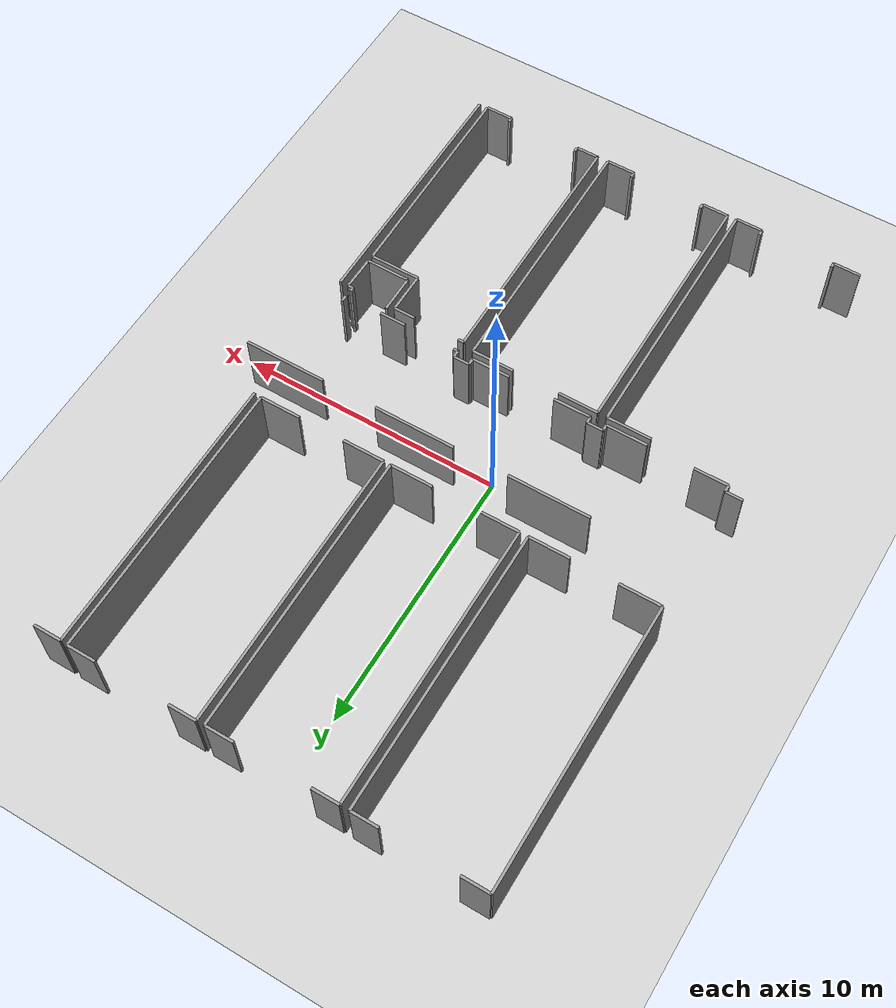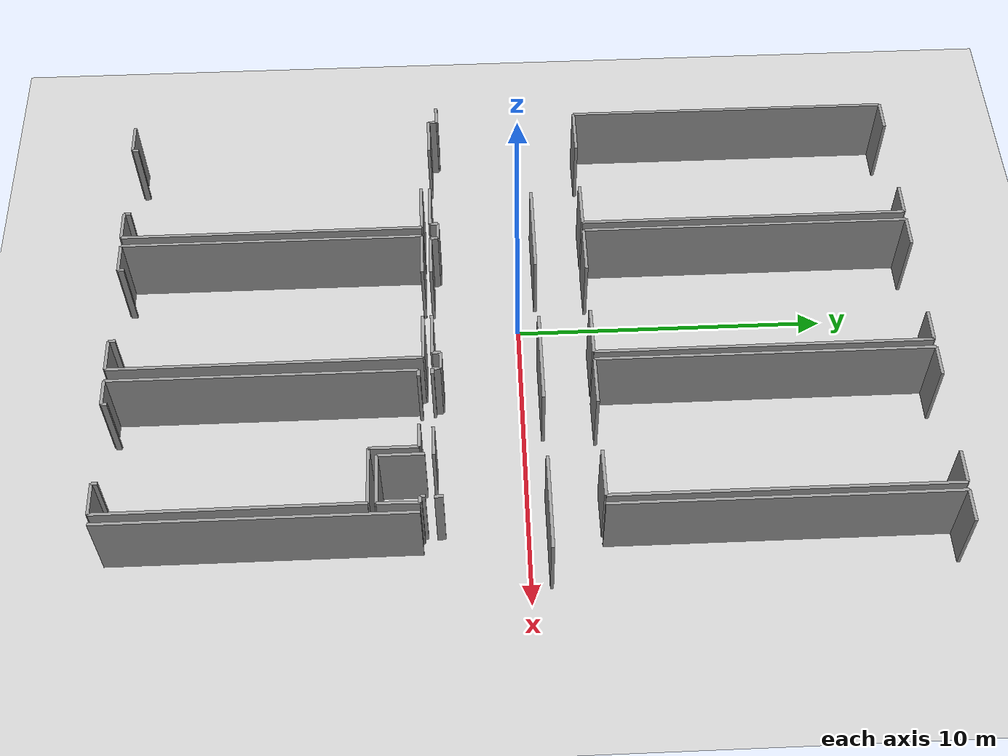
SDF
<sdf version="1.6">
 <world name="default">
  <model name="ground_plane">
   <static>1</static>
   <link name="link">
    <collision name="collision">
     <geometry><plane><normal>0 0 1</normal><size>100 100</size></plane></geometry>
     <surface><friction><ode><mu>100</mu><mu2>50</mu2></ode></friction></surface>
    </collision>
    <visual name="visual">
     <cast_shadows>0</cast_shadows>
     <geometry><plane><normal>0 0 1</normal><size>100 100</size></plane></geometry>
     <material>
      <script><uri>file://media/materials/scripts/gazebo.material</uri><name>Gazebo/Grey</name></script>
     </material>
    </visual>
   </link>
  </model>
  <model name="0510030967_A-40">
   <static>1</static>
   <link name="Wall_45">
    <collision name="Wall_45_Collision">
     <geometry><box><size>3.09545875811 0.1 2.5</size></box></geometry>
     <pose>1.54772937905 0 1.25 0 0 0</pose>
    </collision>
    <visual name="Wall_45_Visual">
     <pose>1.54772937905 0 1.25 0 0 0</pose>
     <geometry><box><size>3.09545875811 0.1 2.5</size></box></geometry>
     <material>
      <script><uri>file://media/materials/scripts/gazebo.material</uri><name>Gazebo/Grey</name></script>
      <ambient>1 1 1 1</ambient>
     </material>
    </visual>
    <pose>34.6960021329 -12.2899183668 0 0 0 0.0</pose>
   </link>
   <link name="Wall_46">
    <collision name="Wall_46_Collision">
     <geometry><box><size>3.07362220219 0.1 2.5</size></box></geometry>
     <pose>1.5368111011 0 1.25 0 0 0</pose>
    </collision>
    <visual name="Wall_46_Visual">
     <pose>1.5368111011 0 1.25 0 0 0</pose>
     <geometry><box><size>3.07362220219 0.1 2.5</size></box></geometry>
     <material>
      <script><uri>file://media/materials/scripts/gazebo.material</uri><name>Gazebo/Grey</name></script>
      <ambient>1 1 1 1</ambient>
     </material>
    </visual>
    <pose>39.8865006919 -12.2899183668 0 0 0 0.0</pose>
   </link>
   <link name="Wall_47">
    <collision name="Wall_47_Collision">
     <geometry><box><size>3.10066398365 0.1 2.5</size></box></geometry>
     <pose>1.55033199182 0 1.25 0 0 0</pose>
    </collision>
    <visual name="Wall_47_Visual">
     <pose>1.55033199182 0 1.25 0 0 0</pose>
     <geometry><box><size>3.10066398365 0.1 2.5</size></box></geometry>
     <material>
      <script><uri>file://media/materials/scripts/gazebo.material</uri><name>Gazebo/Grey</name></script>
      <ambient>1 1 1 1</ambient>
     </material>
    </visual>
    <pose>45.0733175061 -12.2899183668 0 0 0 0.0</pose>
   </link>
   <link name="Wall_63">
    <collision name="Wall_63_Collision">
     <geometry><box><size>0.261403887415 0.1 2.5</size></box></geometry>
     <pose>0.130701943707 0 1.25 0 0 0</pose>
    </collision>
    <visual name="Wall_63_Visual">
     <pose>0.130701943707 0 1.25 0 0 0</pose>
     <geometry><box><size>0.261403887415 0.1 2.5</size></box></geometry>
     <material>
      <script><uri>file://media/materials/scripts/gazebo.material</uri><name>Gazebo/Grey</name></script>
      <ambient>1 1 1 1</ambient>
     </material>
    </visual>
    <pose>46.3205403278 -15.4039128061 0 0 0 -1.57079632679</pose>
   </link>
   <link name="Wall_64">
    <collision name="Wall_64_Collision">
     <geometry><box><size>0.984676323841 0.1 2.5</size></box></geometry>
     <pose>0.492338161921 0 1.25 0 0 0</pose>
    </collision>
    <visual name="Wall_64_Visual">
     <pose>0.492338161921 0 1.25 0 0 0</pose>
     <geometry><box><size>0.984676323841 0.1 2.5</size></box></geometry>
     <material>
      <script><uri>file://media/materials/scripts/gazebo.material</uri><name>Gazebo/Grey</name></script>
      <ambient>1 1 1 1</ambient>
     </material>
    </visual>
    <pose>44.8823745985 -15.6653166935 0 0 0 3.14159265359</pose>
   </link>
   <link name="Wall_65">
    <collision name="Wall_65_Collision">
     <geometry><box><size>0.183071590895 0.1 2.5</size></box></geometry>
     <pose>0.0915357954473 0 1.25 0 0 0</pose>
    </collision>
    <visual name="Wall_65_Visual">
     <pose>0.0915357954473 0 1.25 0 0 0</pose>
     <geometry><box><size>0.183071590895 0.1 2.5</size></box></geometry>
     <material>
      <script><uri>file://media/materials/scripts/gazebo.material</uri><name>Gazebo/Grey</name></script>
      <ambient>1 1 1 1</ambient>
     </material>
    </visual>
    <pose>41.928345627 -15.6653166935 0 0 0 3.14159265359</pose>
   </link>
   <link name="Wall_66">
    <collision name="Wall_66_Collision">
     <geometry><box><size>0.259499536608 0.1 2.5</size></box></geometry>
     <pose>0.129749768304 0 1.25 0 0 0</pose>
    </collision>
    <visual name="Wall_66_Visual">
     <pose>0.129749768304 0 1.25 0 0 0</pose>
     <geometry><box><size>0.259499536608 0.1 2.5</size></box></geometry>
     <material>
      <script><uri>file://media/materials/scripts/gazebo.material</uri><name>Gazebo/Grey</name></script>
      <ambient>1 1 1 1</ambient>
     </material>
    </visual>
    <pose>41.7452740361 -15.6653166935 0 0 0 1.57079632679</pose>
   </link>
   <link name="Wall_67">
    <collision name="Wall_67_Collision">
     <geometry><box><size>0.605964426727 0.1 2.5</size></box></geometry>
     <pose>0.302982213363 0 1.25 0 0 0</pose>
    </collision>
    <visual name="Wall_67_Visual">
     <pose>0.302982213363 0 1.25 0 0 0</pose>
     <geometry><box><size>0.605964426727 0.1 2.5</size></box></geometry>
     <material>
      <script><uri>file://media/materials/scripts/gazebo.material</uri><name>Gazebo/Grey</name></script>
      <ambient>1 1 1 1</ambient>
     </material>
    </visual>
    <pose>41.7452740361 -15.4058171569 0 0 0 3.14159265359</pose>
   </link>
   <link name="Wall_68">
    <collision name="Wall_68_Collision">
     <geometry><box><size>0.252516916983 0.1 2.5</size></box></geometry>
     <pose>0.126258458492 0 1.25 0 0 0</pose>
    </collision>
    <visual name="Wall_68_Visual">
     <pose>0.126258458492 0 1.25 0 0 0</pose>
     <geometry><box><size>0.252516916983 0.1 2.5</size></box></geometry>
     <material>
      <script><uri>file://media/materials/scripts/gazebo.material</uri><name>Gazebo/Grey</name></script>
      <ambient>1 1 1 1</ambient>
     </material>
    </visual>
    <pose>41.1393096094 -15.4058171569 0 0 0 -1.57079632679</pose>
   </link>
   <link name="Wall_69">
    <collision name="Wall_69_Collision">
     <geometry><box><size>1.43118310968 0.1 2.5</size></box></geometry>
     <pose>0.715591554839 0 1.25 0 0 0</pose>
    </collision>
    <visual name="Wall_69_Visual">
     <pose>0.715591554839 0 1.25 0 0 0</pose>
     <geometry><box><size>1.43118310968 0.1 2.5</size></box></geometry>
     <material>
      <script><uri>file://media/materials/scripts/gazebo.material</uri><name>Gazebo/Grey</name></script>
      <ambient>1 1 1 1</ambient>
     </material>
    </visual>
    <pose>41.1393096094 -15.6583340739 0 0 0 3.14159265359</pose>
   </link>
   <link name="Wall_70">
    <collision name="Wall_70_Collision">
     <geometry><box><size>1.40820394328 0.1 2.5</size></box></geometry>
     <pose>0.704101971638 0 1.25 0 0 0</pose>
    </collision>
    <visual name="Wall_70_Visual">
     <pose>0.704101971638 0 1.25 0 0 0</pose>
     <geometry><box><size>1.40820394328 0.1 2.5</size></box></geometry>
     <material>
      <script><uri>file://media/materials/scripts/gazebo.material</uri><name>Gazebo/Grey</name></script>
      <ambient>1 1 1 1</ambient>
     </material>
    </visual>
    <pose>37.9511724453 -15.6583340739 0 0 0 3.14159265359</pose>
   </link>
   <link name="Wall_71">
    <collision name="Wall_71_Collision">
     <geometry><box><size>0.247057778003 0.1 2.5</size></box></geometry>
     <pose>0.123528889002 0 1.25 0 0 0</pose>
    </collision>
    <visual name="Wall_71_Visual">
     <pose>0.123528889002 0 1.25 0 0 0</pose>
     <geometry><box><size>0.247057778003 0.1 2.5</size></box></geometry>
     <material>
      <script><uri>file://media/materials/scripts/gazebo.material</uri><name>Gazebo/Grey</name></script>
      <ambient>1 1 1 1</ambient>
     </material>
    </visual>
    <pose>36.542968502 -15.6583340739 0 0 0 1.57079632679</pose>
   </link>
   <link name="Wall_72">
    <collision name="Wall_72_Collision">
     <geometry><box><size>0.613074003072 0.1 2.5</size></box></geometry>
     <pose>0.306537001536 0 1.25 0 0 0</pose>
    </collision>
    <visual name="Wall_72_Visual">
     <pose>0.306537001536 0 1.25 0 0 0</pose>
     <geometry><box><size>0.613074003072 0.1 2.5</size></box></geometry>
     <material>
      <script><uri>file://media/materials/scripts/gazebo.material</uri><name>Gazebo/Grey</name></script>
      <ambient>1 1 1 1</ambient>
     </material>
    </visual>
    <pose>36.542968502 -15.4112762959 0 0 0 3.14159265359</pose>
   </link>
   <link name="Wall_73">
    <collision name="Wall_73_Collision">
     <geometry><box><size>0.248073431767 0.1 2.5</size></box></geometry>
     <pose>0.124036715884 0 1.25 0 0 0</pose>
    </collision>
    <visual name="Wall_73_Visual">
     <pose>0.124036715884 0 1.25 0 0 0</pose>
     <geometry><box><size>0.248073431767 0.1 2.5</size></box></geometry>
     <material>
      <script><uri>file://media/materials/scripts/gazebo.material</uri><name>Gazebo/Grey</name></script>
      <ambient>1 1 1 1</ambient>
     </material>
    </visual>
    <pose>35.929894499 -15.4112762959 0 0 0 -1.57079632679</pose>
   </link>
   <link name="Wall_74">
    <collision name="Wall_74_Collision">
     <geometry><box><size>1.54163545647 0.1 2.5</size></box></geometry>
     <pose>0.770817728236 0 1.25 0 0 0</pose>
    </collision>
    <visual name="Wall_74_Visual">
     <pose>0.770817728236 0 1.25 0 0 0</pose>
     <geometry><box><size>1.54163545647 0.1 2.5</size></box></geometry>
     <material>
      <script><uri>file://media/materials/scripts/gazebo.material</uri><name>Gazebo/Grey</name></script>
      <ambient>1 1 1 1</ambient>
     </material>
    </visual>
    <pose>35.929894499 -15.6593497277 0 0 0 3.14159265359</pose>
   </link>
   <link name="Wall_75">
    <collision name="Wall_75_Collision">
     <geometry><box><size>1.27756547793 0.1 2.5</size></box></geometry>
     <pose>0.638782738964 0 1.25 0 0 0</pose>
    </collision>
    <visual name="Wall_75_Visual">
     <pose>0.638782738964 0 1.25 0 0 0</pose>
     <geometry><box><size>1.27756547793 0.1 2.5</size></box></geometry>
     <material>
      <script><uri>file://media/materials/scripts/gazebo.material</uri><name>Gazebo/Grey</name></script>
      <ambient>1 1 1 1</ambient>
     </material>
    </visual>
    <pose>32.652252847 -15.6593497277 0 0 0 3.14159265359</pose>
   </link>
   <link name="Wall_76">
    <collision name="Wall_76_Collision">
     <geometry><box><size>0.262673454619 0.1 2.5</size></box></geometry>
     <pose>0.13133672731 0 1.25 0 0 0</pose>
    </collision>
    <visual name="Wall_76_Visual">
     <pose>0.13133672731 0 1.25 0 0 0</pose>
     <geometry><box><size>0.262673454619 0.1 2.5</size></box></geometry>
     <material>
      <script><uri>file://media/materials/scripts/gazebo.material</uri><name>Gazebo/Grey</name></script>
      <ambient>1 1 1 1</ambient>
     </material>
    </visual>
    <pose>31.3746873691 -15.6593497277 0 0 0 1.57079632679</pose>
   </link>
   <link name="Wall_77">
    <collision name="Wall_77_Collision">
     <geometry><box><size>0.643797529422 0.1 2.5</size></box></geometry>
     <pose>0.321898764711 0 1.25 0 0 0</pose>
    </collision>
    <visual name="Wall_77_Visual">
     <pose>0.321898764711 0 1.25 0 0 0</pose>
     <geometry><box><size>0.643797529422 0.1 2.5</size></box></geometry>
     <material>
      <script><uri>file://media/materials/scripts/gazebo.material</uri><name>Gazebo/Grey</name></script>
      <ambient>1 1 1 1</ambient>
     </material>
    </visual>
    <pose>31.3746873691 -15.3966762731 0 0 0 3.14159265359</pose>
   </link>
   <link name="Wall_147">
    <collision name="Wall_147_Collision">
     <geometry><box><size>1.01844681148 0.1 2.5</size></box></geometry>
     <pose>0.509223405741 0 1.25 0 0 0</pose>
    </collision>
    <visual name="Wall_147_Visual">
     <pose>0.509223405741 0 1.25 0 0 0</pose>
     <geometry><box><size>1.01844681148 0.1 2.5</size></box></geometry>
     <material>
      <script><uri>file://media/materials/scripts/gazebo.material</uri><name>Gazebo/Grey</name></script>
      <ambient>1 1 1 1</ambient>
     </material>
    </visual>
    <pose>36.0733555931 -25.7340002793 0 0 0 3.14159265359</pose>
   </link>
   <link name="Wall_148">
    <collision name="Wall_148_Collision">
     <geometry><box><size>0.217095991976 0.1 2.5</size></box></geometry>
     <pose>0.108547995988 0 1.25 0 0 0</pose>
    </collision>
    <visual name="Wall_148_Visual">
     <pose>0.108547995988 0 1.25 0 0 0</pose>
     <geometry><box><size>0.217095991976 0.1 2.5</size></box></geometry>
     <material>
      <script><uri>file://media/materials/scripts/gazebo.material</uri><name>Gazebo/Grey</name></script>
      <ambient>1 1 1 1</ambient>
     </material>
    </visual>
    <pose>35.0549087816 -25.7340002793 0 0 0 1.57079632679</pose>
   </link>
   <link name="Wall_149">
    <collision name="Wall_149_Collision">
     <geometry><box><size>0.19018116724 0.1 2.5</size></box></geometry>
     <pose>0.09509058362 0 1.25 0 0 0</pose>
    </collision>
    <visual name="Wall_149_Visual">
     <pose>0.09509058362 0 1.25 0 0 0</pose>
     <geometry><box><size>0.19018116724 0.1 2.5</size></box></geometry>
     <material>
      <script><uri>file://media/materials/scripts/gazebo.material</uri><name>Gazebo/Grey</name></script>
      <ambient>1 1 1 1</ambient>
     </material>
    </visual>
    <pose>32.2279634872 -25.5169042873 0 0 0 -1.57079632679</pose>
   </link>
   <link name="Wall_150">
    <collision name="Wall_150_Collision">
     <geometry><box><size>1.03190422385 0.1 2.5</size></box></geometry>
     <pose>0.515952111925 0 1.25 0 0 0</pose>
    </collision>
    <visual name="Wall_150_Visual">
     <pose>0.515952111925 0 1.25 0 0 0</pose>
     <geometry><box><size>1.03190422385 0.1 2.5</size></box></geometry>
     <material>
      <script><uri>file://media/materials/scripts/gazebo.material</uri><name>Gazebo/Grey</name></script>
      <ambient>1 1 1 1</ambient>
     </material>
    </visual>
    <pose>32.2279634872 -25.7070854546 0 0 0 3.14159265359</pose>
   </link>
   <link name="Wall_153">
    <collision name="Wall_153_Collision">
     <geometry><box><size>1.67252783526 0.1 2.5</size></box></geometry>
     <pose>0.83626391763 0 1.25 0 0 0</pose>
    </collision>
    <visual name="Wall_153_Visual">
     <pose>0.83626391763 0 1.25 0 0 0</pose>
     <geometry><box><size>1.67252783526 0.1 2.5</size></box></geometry>
     <material>
      <script><uri>file://media/materials/scripts/gazebo.material</uri><name>Gazebo/Grey</name></script>
      <ambient>1 1 1 1</ambient>
     </material>
    </visual>
    <pose>34.3916868739 -15.9409397336 0 0 0 0.0</pose>
   </link>
   <link name="Wall_154">
    <collision name="Wall_154_Collision">
     <geometry><box><size>9.79306481173 0.1 2.5</size></box></geometry>
     <pose>4.89653240586 0 1.25 0 0 0</pose>
    </collision>
    <visual name="Wall_154_Visual">
     <pose>4.89653240586 0 1.25 0 0 0</pose>
     <geometry><box><size>9.79306481173 0.1 2.5</size></box></geometry>
     <material>
      <script><uri>file://media/materials/scripts/gazebo.material</uri><name>Gazebo/Grey</name></script>
      <ambient>1 1 1 1</ambient>
     </material>
    </visual>
    <pose>36.0642147092 -15.9409397336 0 0 0 -1.56986292286</pose>
   </link>
   <link name="Wall_155">
    <collision name="Wall_155_Collision">
     <geometry><box><size>1.0800208209 0.1 2.5</size></box></geometry>
     <pose>0.540010410451 0 1.25 0 0 0</pose>
    </collision>
    <visual name="Wall_155_Visual">
     <pose>0.540010410451 0 1.25 0 0 0</pose>
     <geometry><box><size>1.0800208209 0.1 2.5</size></box></geometry>
     <material>
      <script><uri>file://media/materials/scripts/gazebo.material</uri><name>Gazebo/Grey</name></script>
      <ambient>1 1 1 1</ambient>
     </material>
    </visual>
    <pose>41.343836886 -25.7336194091 0 0 0 3.14159265359</pose>
   </link>
   <link name="Wall_156">
    <collision name="Wall_156_Collision">
     <geometry><box><size>0.216715121815 0.1 2.5</size></box></geometry>
     <pose>0.108357560907 0 1.25 0 0 0</pose>
    </collision>
    <visual name="Wall_156_Visual">
     <pose>0.108357560907 0 1.25 0 0 0</pose>
     <geometry><box><size>0.216715121815 0.1 2.5</size></box></geometry>
     <material>
      <script><uri>file://media/materials/scripts/gazebo.material</uri><name>Gazebo/Grey</name></script>
      <ambient>1 1 1 1</ambient>
     </material>
    </visual>
    <pose>40.2638160651 -25.7336194091 0 0 0 1.57079632679</pose>
   </link>
   <link name="Wall_157">
    <collision name="Wall_157_Collision">
     <geometry><box><size>0.191958561326 0.1 2.5</size></box></geometry>
     <pose>0.0959792806632 0 1.25 0 0 0</pose>
    </collision>
    <visual name="Wall_157_Visual">
     <pose>0.0959792806632 0 1.25 0 0 0</pose>
     <geometry><box><size>0.191958561326 0.1 2.5</size></box></geometry>
     <material>
      <script><uri>file://media/materials/scripts/gazebo.material</uri><name>Gazebo/Grey</name></script>
      <ambient>1 1 1 1</ambient>
     </material>
    </visual>
    <pose>37.4339507662 -25.5169042873 0 0 0 -1.57079632679</pose>
   </link>
   <link name="Wall_158">
    <collision name="Wall_158_Collision">
     <geometry><box><size>1.01006766793 0.1 2.5</size></box></geometry>
     <pose>0.505033833966 0 1.25 0 0 0</pose>
    </collision>
    <visual name="Wall_158_Visual">
     <pose>0.505033833966 0 1.25 0 0 0</pose>
     <geometry><box><size>1.01006766793 0.1 2.5</size></box></geometry>
     <material>
      <script><uri>file://media/materials/scripts/gazebo.material</uri><name>Gazebo/Grey</name></script>
      <ambient>1 1 1 1</ambient>
     </material>
    </visual>
    <pose>37.4339507662 -25.7088628487 0 0 0 3.14159265359</pose>
   </link>
   <link name="Wall_159">
    <collision name="Wall_159_Collision">
     <geometry><box><size>9.76779615829 0.1 2.5</size></box></geometry>
     <pose>4.88389807914 0 1.25 0 0 0</pose>
    </collision>
    <visual name="Wall_159_Visual">
     <pose>4.88389807914 0 1.25 0 0 0</pose>
     <geometry><box><size>9.76779615829 0.1 2.5</size></box></geometry>
     <material>
      <script><uri>file://media/materials/scripts/gazebo.material</uri><name>Gazebo/Grey</name></script>
      <ambient>1 1 1 1</ambient>
     </material>
    </visual>
    <pose>36.4238830983 -25.7088628487 0 0 0 1.57079632679</pose>
   </link>
   <link name="Wall_160">
    <collision name="Wall_160_Collision">
     <geometry><box><size>1.50545279114 0.1 2.5</size></box></geometry>
     <pose>0.752726395572 0 1.25 0 0 0</pose>
    </collision>
    <visual name="Wall_160_Visual">
     <pose>0.752726395572 0 1.25 0 0 0</pose>
     <geometry><box><size>1.50545279114 0.1 2.5</size></box></geometry>
     <material>
      <script><uri>file://media/materials/scripts/gazebo.material</uri><name>Gazebo/Grey</name></script>
      <ambient>1 1 1 1</ambient>
     </material>
    </visual>
    <pose>36.4238830983 -15.9410666904 0 0 0 0.0</pose>
   </link>
   <link name="Wall_161">
    <collision name="Wall_161_Collision">
     <geometry><box><size>1.59064075057 0.1 2.5</size></box></geometry>
     <pose>0.795320375284 0 1.25 0 0 0</pose>
    </collision>
    <visual name="Wall_161_Visual">
     <pose>0.795320375284 0 1.25 0 0 0</pose>
     <geometry><box><size>1.59064075057 0.1 2.5</size></box></geometry>
     <material>
      <script><uri>file://media/materials/scripts/gazebo.material</uri><name>Gazebo/Grey</name></script>
      <ambient>1 1 1 1</ambient>
     </material>
    </visual>
    <pose>39.7128238983 -15.9410666904 0 0 0 0.0</pose>
   </link>
   <link name="Wall_162">
    <collision name="Wall_162_Collision">
     <geometry><box><size>9.79263594072 0.1 2.5</size></box></geometry>
     <pose>4.89631797036 0 1.25 0 0 0</pose>
    </collision>
    <visual name="Wall_162_Visual">
     <pose>4.89631797036 0 1.25 0 0 0</pose>
     <geometry><box><size>9.79263594072 0.1 2.5</size></box></geometry>
     <material>
      <script><uri>file://media/materials/scripts/gazebo.material</uri><name>Gazebo/Grey</name></script>
      <ambient>1 1 1 1</ambient>
     </material>
    </visual>
    <pose>41.3034646489 -15.9410666904 0 0 0 -1.56667360113</pose>
   </link>
   <link name="Wall_163">
    <collision name="Wall_163_Collision">
     <geometry><box><size>1.0445998959 0.1 2.5</size></box></geometry>
     <pose>0.522299947948 0 1.25 0 0 0</pose>
    </collision>
    <visual name="Wall_163_Visual">
     <pose>0.522299947948 0 1.25 0 0 0</pose>
     <geometry><box><size>1.0445998959 0.1 2.5</size></box></geometry>
     <material>
      <script><uri>file://media/materials/scripts/gazebo.material</uri><name>Gazebo/Grey</name></script>
      <ambient>1 1 1 1</ambient>
     </material>
    </visual>
    <pose>46.4940901647 -25.7205428669 0 0 0 3.14159265359</pose>
   </link>
   <link name="Wall_164">
    <collision name="Wall_164_Collision">
     <geometry><box><size>0.183325504336 0.1 2.5</size></box></geometry>
     <pose>0.0916627521678 0 1.25 0 0 0</pose>
    </collision>
    <visual name="Wall_164_Visual">
     <pose>0.0916627521678 0 1.25 0 0 0</pose>
     <geometry><box><size>0.183325504336 0.1 2.5</size></box></geometry>
     <material>
      <script><uri>file://media/materials/scripts/gazebo.material</uri><name>Gazebo/Grey</name></script>
      <ambient>1 1 1 1</ambient>
     </material>
    </visual>
    <pose>45.4494902688 -25.7205428669 0 0 0 1.57079632679</pose>
   </link>
   <link name="Wall_165">
    <collision name="Wall_165_Collision">
     <geometry><box><size>0.180786369926 0.1 2.5</size></box></geometry>
     <pose>0.0903931849632 0 1.25 0 0 0</pose>
    </collision>
    <visual name="Wall_165_Visual">
     <pose>0.0903931849632 0 1.25 0 0 0</pose>
     <geometry><box><size>0.180786369926 0.1 2.5</size></box></geometry>
     <material>
      <script><uri>file://media/materials/scripts/gazebo.material</uri><name>Gazebo/Grey</name></script>
      <ambient>1 1 1 1</ambient>
     </material>
    </visual>
    <pose>42.6399380451 -25.5372173626 0 0 0 -1.57079632679</pose>
   </link>
   <link name="Wall_166">
    <collision name="Wall_166_Collision">
     <geometry><box><size>0.867241357421 0.1 2.5</size></box></geometry>
     <pose>0.433620678711 0 1.25 0 0 0</pose>
    </collision>
    <visual name="Wall_166_Visual">
     <pose>0.433620678711 0 1.25 0 0 0</pose>
     <geometry><box><size>0.867241357421 0.1 2.5</size></box></geometry>
     <material>
      <script><uri>file://media/materials/scripts/gazebo.material</uri><name>Gazebo/Grey</name></script>
      <ambient>1 1 1 1</ambient>
     </material>
    </visual>
    <pose>42.6399380451 -25.7180037325 0 0 0 3.14159265359</pose>
   </link>
   <link name="Wall_167">
    <collision name="Wall_167_Collision">
     <geometry><box><size>9.62433506418 0.1 2.5</size></box></geometry>
     <pose>4.81216753209 0 1.25 0 0 0</pose>
    </collision>
    <visual name="Wall_167_Visual">
     <pose>4.81216753209 0 1.25 0 0 0</pose>
     <geometry><box><size>9.62433506418 0.1 2.5</size></box></geometry>
     <material>
      <script><uri>file://media/materials/scripts/gazebo.material</uri><name>Gazebo/Grey</name></script>
      <ambient>1 1 1 1</ambient>
     </material>
    </visual>
    <pose>41.7726966877 -25.7180037325 0 0 0 1.57079632679</pose>
   </link>
   <link name="Wall_168">
    <collision name="Wall_168_Collision">
     <geometry><box><size>0.228141226656 0.1 2.5</size></box></geometry>
     <pose>0.114070613328 0 1.25 0 0 0</pose>
    </collision>
    <visual name="Wall_168_Visual">
     <pose>0.114070613328 0 1.25 0 0 0</pose>
     <geometry><box><size>0.228141226656 0.1 2.5</size></box></geometry>
     <material>
      <script><uri>file://media/materials/scripts/gazebo.material</uri><name>Gazebo/Grey</name></script>
      <ambient>1 1 1 1</ambient>
     </material>
    </visual>
    <pose>41.7726966877 -16.0936686684 0 0 0 0.0</pose>
   </link>
   <link name="Wall_169">
    <collision name="Wall_169_Collision">
     <geometry><box><size>0.807952568969 0.1 2.5</size></box></geometry>
     <pose>0.403976284485 0 1.25 0 0 0</pose>
    </collision>
    <visual name="Wall_169_Visual">
     <pose>0.403976284485 0 1.25 0 0 0</pose>
     <geometry><box><size>0.807952568969 0.1 2.5</size></box></geometry>
     <material>
      <script><uri>file://media/materials/scripts/gazebo.material</uri><name>Gazebo/Grey</name></script>
      <ambient>1 1 1 1</ambient>
     </material>
    </visual>
    <pose>43.7651554585 -16.0936686684 0 0 0 0.0</pose>
   </link>
   <link name="Wall_170">
    <collision name="Wall_170_Collision">
     <geometry><box><size>1.5170058527 0.1 2.5</size></box></geometry>
     <pose>0.758502926352 0 1.25 0 0 0</pose>
    </collision>
    <visual name="Wall_170_Visual">
     <pose>0.758502926352 0 1.25 0 0 0</pose>
     <geometry><box><size>1.5170058527 0.1 2.5</size></box></geometry>
     <material>
      <script><uri>file://media/materials/scripts/gazebo.material</uri><name>Gazebo/Grey</name></script>
      <ambient>1 1 1 1</ambient>
     </material>
    </visual>
    <pose>44.5731080275 -16.0936686684 0 0 0 -1.57079632679</pose>
   </link>
   <link name="Wall_171">
    <collision name="Wall_171_Collision">
     <geometry><box><size>1.88530729874 0.1 2.5</size></box></geometry>
     <pose>0.942653649371 0 1.25 0 0 0</pose>
    </collision>
    <visual name="Wall_171_Visual">
     <pose>0.942653649371 0 1.25 0 0 0</pose>
     <geometry><box><size>1.88530729874 0.1 2.5</size></box></geometry>
     <material>
      <script><uri>file://media/materials/scripts/gazebo.material</uri><name>Gazebo/Grey</name></script>
      <ambient>1 1 1 1</ambient>
     </material>
    </visual>
    <pose>44.5731080275 -17.6106745211 0 0 0 0.0</pose>
   </link>
   <link name="Wall_172">
    <collision name="Wall_172_Collision">
     <geometry><box><size>8.10994681127 0.1 2.5</size></box></geometry>
     <pose>4.05497340563 0 1.25 0 0 0</pose>
    </collision>
    <visual name="Wall_172_Visual">
     <pose>4.05497340563 0 1.25 0 0 0</pose>
     <geometry><box><size>8.10994681127 0.1 2.5</size></box></geometry>
     <material>
      <script><uri>file://media/materials/scripts/gazebo.material</uri><name>Gazebo/Grey</name></script>
      <ambient>1 1 1 1</ambient>
     </material>
    </visual>
    <pose>46.4584153262 -17.6106745211 0 0 0 -1.56639741342</pose>
   </link>
   <link name="Wall_177">
    <collision name="Wall_177_Collision">
     <geometry><box><size>9.62243071337 0.1 2.5</size></box></geometry>
     <pose>4.81121535668 0 1.25 0 0 0</pose>
    </collision>
    <visual name="Wall_177_Visual">
     <pose>4.81121535668 0 1.25 0 0 0</pose>
     <geometry><box><size>9.62243071337 0.1 2.5</size></box></geometry>
     <material>
      <script><uri>file://media/materials/scripts/gazebo.material</uri><name>Gazebo/Grey</name></script>
      <ambient>1 1 1 1</ambient>
     </material>
    </visual>
    <pose>46.8224002438 -25.7014993589 0 0 0 1.57079632679</pose>
   </link>
   <link name="Wall_191">
    <collision name="Wall_191_Collision">
     <geometry><box><size>1.64193126563 0.1 2.5</size></box></geometry>
     <pose>0.820965632816 0 1.25 0 0 0</pose>
    </collision>
    <visual name="Wall_191_Visual">
     <pose>0.820965632816 0 1.25 0 0 0</pose>
     <geometry><box><size>1.64193126563 0.1 2.5</size></box></geometry>
     <material>
      <script><uri>file://media/materials/scripts/gazebo.material</uri><name>Gazebo/Grey</name></script>
      <ambient>1 1 1 1</ambient>
     </material>
    </visual>
    <pose>46.4730153491 -17.3638706565 0 0 0 3.14159265359</pose>
   </link>
   <link name="Wall_192">
    <collision name="Wall_192_Collision">
     <geometry><box><size>1.43715007554 0.1 2.5</size></box></geometry>
     <pose>0.71857503777 0 1.25 0 0 0</pose>
    </collision>
    <visual name="Wall_192_Visual">
     <pose>0.71857503777 0 1.25 0 0 0</pose>
     <geometry><box><size>1.43715007554 0.1 2.5</size></box></geometry>
     <material>
      <script><uri>file://media/materials/scripts/gazebo.material</uri><name>Gazebo/Grey</name></script>
      <ambient>1 1 1 1</ambient>
     </material>
    </visual>
    <pose>44.8310840834 -17.3638706565 0 0 0 1.57079632679</pose>
   </link>
   <link name="Wall_193">
    <collision name="Wall_193_Collision">
     <geometry><box><size>0.154506328793 0.1 2.5</size></box></geometry>
     <pose>0.0772531643963 0 1.25 0 0 0</pose>
    </collision>
    <visual name="Wall_193_Visual">
     <pose>0.0772531643963 0 1.25 0 0 0</pose>
     <geometry><box><size>0.154506328793 0.1 2.5</size></box></geometry>
     <material>
      <script><uri>file://media/materials/scripts/gazebo.material</uri><name>Gazebo/Grey</name></script>
      <ambient>1 1 1 1</ambient>
     </material>
    </visual>
    <pose>46.2962915942 -15.926720581 0 0 0 -1.57079632679</pose>
   </link>
   <link name="Wall_194">
    <collision name="Wall_194_Collision">
     <geometry><box><size>0.201988142242 0.1 2.5</size></box></geometry>
     <pose>0.100994071121 0 1.25 0 0 0</pose>
    </collision>
    <visual name="Wall_194_Visual">
     <pose>0.100994071121 0 1.25 0 0 0</pose>
     <geometry><box><size>0.201988142242 0.1 2.5</size></box></geometry>
     <material>
      <script><uri>file://media/materials/scripts/gazebo.material</uri><name>Gazebo/Grey</name></script>
      <ambient>1 1 1 1</ambient>
     </material>
    </visual>
    <pose>46.2962915942 -16.0812269097 0 0 0 0.0</pose>
   </link>
   <link name="Wall_195">
    <collision name="Wall_195_Collision">
     <geometry><box><size>1.28289254045 0.1 2.5</size></box></geometry>
     <pose>0.641446270224 0 1.25 0 0 0</pose>
    </collision>
    <visual name="Wall_195_Visual">
     <pose>0.641446270224 0 1.25 0 0 0</pose>
     <geometry><box><size>1.28289254045 0.1 2.5</size></box></geometry>
     <material>
      <script><uri>file://media/materials/scripts/gazebo.material</uri><name>Gazebo/Grey</name></script>
      <ambient>1 1 1 1</ambient>
     </material>
    </visual>
    <pose>46.4982797364 -16.0812269097 0 0 0 -1.59049089972</pose>
   </link>
   <link name="Wall_219">
    <collision name="Wall_219_Collision">
     <geometry><box><size>1.54531720137 0.1 2.5</size></box></geometry>
     <pose>0.772658600683 0 1.25 0 0 0</pose>
    </collision>
    <visual name="Wall_219_Visual">
     <pose>0.772658600683 0 1.25 0 0 0</pose>
     <geometry><box><size>1.54531720137 0.1 2.5</size></box></geometry>
     <material>
      <script><uri>file://media/materials/scripts/gazebo.material</uri><name>Gazebo/Grey</name></script>
      <ambient>1 1 1 1</ambient>
     </material>
    </visual>
    <pose>36.0784338619 -10.6567471149 0 0 0 3.14159265359</pose>
   </link>
   <link name="Wall_220">
    <collision name="Wall_220_Collision">
     <geometry><box><size>1.57794507852 0.1 2.5</size></box></geometry>
     <pose>0.788972539261 0 1.25 0 0 0</pose>
    </collision>
    <visual name="Wall_220_Visual">
     <pose>0.788972539261 0 1.25 0 0 0</pose>
     <geometry><box><size>1.57794507852 0.1 2.5</size></box></geometry>
     <material>
      <script><uri>file://media/materials/scripts/gazebo.material</uri><name>Gazebo/Grey</name></script>
      <ambient>1 1 1 1</ambient>
     </material>
    </visual>
    <pose>32.7759086927 -10.6567471149 0 0 0 3.14159265359</pose>
   </link>
   <link name="Wall_221">
    <collision name="Wall_221_Collision">
     <geometry><box><size>10.6417662219 0.1 2.5</size></box></geometry>
     <pose>5.32088311095 0 1.25 0 0 0</pose>
    </collision>
    <visual name="Wall_221_Visual">
     <pose>5.32088311095 0 1.25 0 0 0</pose>
     <geometry><box><size>10.6417662219 0.1 2.5</size></box></geometry>
     <material>
      <script><uri>file://media/materials/scripts/gazebo.material</uri><name>Gazebo/Grey</name></script>
      <ambient>1 1 1 1</ambient>
     </material>
    </visual>
    <pose>31.1979636142 -10.6567471149 0 0 0 1.57079632679</pose>
   </link>
   <link name="Wall_222">
    <collision name="Wall_222_Collision">
     <geometry><box><size>1.04777381391 0.1 2.5</size></box></geometry>
     <pose>0.523886906953 0 1.25 0 0 0</pose>
    </collision>
    <visual name="Wall_222_Visual">
     <pose>0.523886906953 0 1.25 0 0 0</pose>
     <geometry><box><size>1.04777381391 0.1 2.5</size></box></geometry>
     <material>
      <script><uri>file://media/materials/scripts/gazebo.material</uri><name>Gazebo/Grey</name></script>
      <ambient>1 1 1 1</ambient>
     </material>
    </visual>
    <pose>31.1979636142 -0.0149808930136 0 0 0 0.0</pose>
   </link>
   <link name="Wall_223">
    <collision name="Wall_223_Collision">
     <geometry><box><size>1.03330074778 0.1 2.5</size></box></geometry>
     <pose>0.516650373888 0 1.25 0 0 0</pose>
    </collision>
    <visual name="Wall_223_Visual">
     <pose>0.516650373888 0 1.25 0 0 0</pose>
     <geometry><box><size>1.03330074778 0.1 2.5</size></box></geometry>
     <material>
      <script><uri>file://media/materials/scripts/gazebo.material</uri><name>Gazebo/Grey</name></script>
      <ambient>1 1 1 1</ambient>
     </material>
    </visual>
    <pose>35.0349765765 -0.0149808930136 0 0 0 0.0</pose>
   </link>
   <link name="Wall_224">
    <collision name="Wall_224_Collision">
     <geometry><box><size>10.6417710686 0.1 2.5</size></box></geometry>
     <pose>5.32088553431 0 1.25 0 0 0</pose>
    </collision>
    <visual name="Wall_224_Visual">
     <pose>5.32088553431 0 1.25 0 0 0</pose>
     <geometry><box><size>10.6417710686 0.1 2.5</size></box></geometry>
     <material>
      <script><uri>file://media/materials/scripts/gazebo.material</uri><name>Gazebo/Grey</name></script>
      <ambient>1 1 1 1</ambient>
     </material>
    </visual>
    <pose>36.0682773243 -0.0149808930136 0 0 0 -1.56984192371</pose>
   </link>
   <link name="Wall_225">
    <collision name="Wall_225_Collision">
     <geometry><box><size>1.61400078713 0.1 2.5</size></box></geometry>
     <pose>0.807000393566 0 1.25 0 0 0</pose>
    </collision>
    <visual name="Wall_225_Visual">
     <pose>0.807000393566 0 1.25 0 0 0</pose>
     <geometry><box><size>1.61400078713 0.1 2.5</size></box></geometry>
     <material>
      <script><uri>file://media/materials/scripts/gazebo.material</uri><name>Gazebo/Grey</name></script>
      <ambient>1 1 1 1</ambient>
     </material>
    </visual>
    <pose>41.3192072822 -10.6495105818 0 0 0 3.14159265359</pose>
   </link>
   <link name="Wall_226">
    <collision name="Wall_226_Collision">
     <geometry><box><size>1.59432249546 0.1 2.5</size></box></geometry>
     <pose>0.797161247731 0 1.25 0 0 0</pose>
    </collision>
    <visual name="Wall_226_Visual">
     <pose>0.797161247731 0 1.25 0 0 0</pose>
     <geometry><box><size>1.59432249546 0.1 2.5</size></box></geometry>
     <material>
      <script><uri>file://media/materials/scripts/gazebo.material</uri><name>Gazebo/Grey</name></script>
      <ambient>1 1 1 1</ambient>
     </material>
    </visual>
    <pose>38.0015742633 -10.6495105818 0 0 0 3.14159265359</pose>
   </link>
   <link name="Wall_227">
    <collision name="Wall_227_Collision">
     <geometry><box><size>10.6350375157 0.1 2.5</size></box></geometry>
     <pose>5.31751875786 0 1.25 0 0 0</pose>
    </collision>
    <visual name="Wall_227_Visual">
     <pose>5.31751875786 0 1.25 0 0 0</pose>
     <geometry><box><size>10.6350375157 0.1 2.5</size></box></geometry>
     <material>
      <script><uri>file://media/materials/scripts/gazebo.material</uri><name>Gazebo/Grey</name></script>
      <ambient>1 1 1 1</ambient>
     </material>
    </visual>
    <pose>36.4072517679 -10.6495105818 0 0 0 1.57079632679</pose>
   </link>
   <link name="Wall_228">
    <collision name="Wall_228_Collision">
     <geometry><box><size>1.0129876725 0.1 2.5</size></box></geometry>
     <pose>0.506493836251 0 1.25 0 0 0</pose>
    </collision>
    <visual name="Wall_228_Visual">
     <pose>0.506493836251 0 1.25 0 0 0</pose>
     <geometry><box><size>1.0129876725 0.1 2.5</size></box></geometry>
     <material>
      <script><uri>file://media/materials/scripts/gazebo.material</uri><name>Gazebo/Grey</name></script>
      <ambient>1 1 1 1</ambient>
     </material>
    </visual>
    <pose>36.4072517679 -0.0144730661317 0 0 0 0.0</pose>
   </link>
   <link name="Wall_229">
    <collision name="Wall_229_Collision">
     <geometry><box><size>1.07024515343 0.1 2.5</size></box></geometry>
     <pose>0.535122576714 0 1.25 0 0 0</pose>
    </collision>
    <visual name="Wall_229_Visual">
     <pose>0.535122576714 0 1.25 0 0 0</pose>
     <geometry><box><size>1.07024515343 0.1 2.5</size></box></geometry>
     <material>
      <script><uri>file://media/materials/scripts/gazebo.material</uri><name>Gazebo/Grey</name></script>
      <ambient>1 1 1 1</ambient>
     </material>
    </visual>
    <pose>40.2304264476 -0.0144730661317 0 0 0 0.0</pose>
   </link>
   <link name="Wall_230">
    <collision name="Wall_230_Collision">
     <geometry><box><size>10.6350536685 0.1 2.5</size></box></geometry>
     <pose>5.31752683425 0 1.25 0 0 0</pose>
    </collision>
    <visual name="Wall_230_Visual">
     <pose>5.31752683425 0 1.25 0 0 0</pose>
     <geometry><box><size>10.6350536685 0.1 2.5</size></box></geometry>
     <material>
      <script><uri>file://media/materials/scripts/gazebo.material</uri><name>Gazebo/Grey</name></script>
      <ambient>1 1 1 1</ambient>
     </material>
    </visual>
    <pose>41.3006716011 -0.0144730661317 0 0 0 -1.56905344038</pose>
   </link>
   <link name="Wall_231">
    <collision name="Wall_231_Collision">
     <geometry><box><size>1.55496591212 0.1 2.5</size></box></geometry>
     <pose>0.77748295606 0 1.25 0 0 0</pose>
    </collision>
    <visual name="Wall_231_Visual">
     <pose>0.77748295606 0 1.25 0 0 0</pose>
     <geometry><box><size>1.55496591212 0.1 2.5</size></box></geometry>
     <material>
      <script><uri>file://media/materials/scripts/gazebo.material</uri><name>Gazebo/Grey</name></script>
      <ambient>1 1 1 1</ambient>
     </material>
    </visual>
    <pose>46.4940901647 -10.649002755 0 0 0 3.14159265359</pose>
   </link>
   <link name="Wall_232">
    <collision name="Wall_232_Collision">
     <geometry><box><size>1.57857986212 0.1 2.5</size></box></geometry>
     <pose>0.789289931062 0 1.25 0 0 0</pose>
    </collision>
    <visual name="Wall_232_Visual">
     <pose>0.789289931062 0 1.25 0 0 0</pose>
     <geometry><box><size>1.57857986212 0.1 2.5</size></box></geometry>
     <material>
      <script><uri>file://media/materials/scripts/gazebo.material</uri><name>Gazebo/Grey</name></script>
      <ambient>1 1 1 1</ambient>
     </material>
    </visual>
    <pose>43.176330189 -10.649002755 0 0 0 3.14159265359</pose>
   </link>
   <link name="Wall_233">
    <collision name="Wall_233_Collision">
     <geometry><box><size>10.649002755 0.1 2.5</size></box></geometry>
     <pose>5.32450137748 0 1.25 0 0 0</pose>
    </collision>
    <visual name="Wall_233_Visual">
     <pose>5.32450137748 0 1.25 0 0 0</pose>
     <geometry><box><size>10.649002755 0.1 2.5</size></box></geometry>
     <material>
      <script><uri>file://media/materials/scripts/gazebo.material</uri><name>Gazebo/Grey</name></script>
      <ambient>1 1 1 1</ambient>
     </material>
    </visual>
    <pose>41.5977503269 -10.649002755 0 0 0 1.57079632679</pose>
   </link>
   <link name="Wall_234">
    <collision name="Wall_234_Collision">
     <geometry><box><size>1.03774423299 0.1 2.5</size></box></geometry>
     <pose>0.518872116495 0 1.25 0 0 0</pose>
    </collision>
    <visual name="Wall_234_Visual">
     <pose>0.518872116495 0 1.25 0 0 0</pose>
     <geometry><box><size>1.03774423299 0.1 2.5</size></box></geometry>
     <material>
      <script><uri>file://media/materials/scripts/gazebo.material</uri><name>Gazebo/Grey</name></script>
      <ambient>1 1 1 1</ambient>
     </material>
    </visual>
    <pose>41.5977503269 -0.0 0 0 0 0.0</pose>
   </link>
   <link name="Wall_235">
    <collision name="Wall_235_Collision">
     <geometry><box><size>1.08154430155 0.1 2.5</size></box></geometry>
     <pose>0.540772150774 0 1.25 0 0 0</pose>
    </collision>
    <visual name="Wall_235_Visual">
     <pose>0.540772150774 0 1.25 0 0 0</pose>
     <geometry><box><size>1.08154430155 0.1 2.5</size></box></geometry>
     <material>
      <script><uri>file://media/materials/scripts/gazebo.material</uri><name>Gazebo/Grey</name></script>
      <ambient>1 1 1 1</ambient>
     </material>
    </visual>
    <pose>45.4277806696 -0.0 0 0 0 0.0</pose>
   </link>
   <link name="Wall_236">
    <collision name="Wall_236_Collision">
     <geometry><box><size>10.6490136527 0.1 2.5</size></box></geometry>
     <pose>5.32450682633 0 1.25 0 0 0</pose>
    </collision>
    <visual name="Wall_236_Visual">
     <pose>5.32450682633 0 1.25 0 0 0</pose>
     <geometry><box><size>10.6490136527 0.1 2.5</size></box></geometry>
     <material>
      <script><uri>file://media/materials/scripts/gazebo.material</uri><name>Gazebo/Grey</name></script>
      <ambient>1 1 1 1</ambient>
     </material>
    </visual>
    <pose>46.5093249711 -0.0 0 0 0 -1.57222695804</pose>
   </link>
   <link name="Wall_239">
    <collision name="Wall_239_Collision">
     <geometry><box><size>10.6581436388 0.1 2.5</size></box></geometry>
     <pose>5.32907181942 0 1.25 0 0 0</pose>
    </collision>
    <visual name="Wall_239_Visual">
     <pose>5.32907181942 0 1.25 0 0 0</pose>
     <geometry><box><size>10.6581436388 0.1 2.5</size></box></geometry>
     <material>
      <script><uri>file://media/materials/scripts/gazebo.material</uri><name>Gazebo/Grey</name></script>
      <ambient>1 1 1 1</ambient>
     </material>
    </visual>
    <pose>46.7752993005 -10.6754097528 0 0 0 1.57079632679</pose>
   </link>
   <link name="Wall_240">
    <collision name="Wall_240_Collision">
     <geometry><box><size>1.04218771821 0.1 2.5</size></box></geometry>
     <pose>0.521093859103 0 1.25 0 0 0</pose>
    </collision>
    <visual name="Wall_240_Visual">
     <pose>0.521093859103 0 1.25 0 0 0</pose>
     <geometry><box><size>1.04218771821 0.1 2.5</size></box></geometry>
     <material>
      <script><uri>file://media/materials/scripts/gazebo.material</uri><name>Gazebo/Grey</name></script>
      <ambient>1 1 1 1</ambient>
     </material>
    </visual>
    <pose>46.7752993005 -0.0172661139817 0 0 0 0.0</pose>
   </link>
   <pose>-38.7 12.8945376871 0 0 0 0</pose>
  </model>
 </world>
</sdf>
